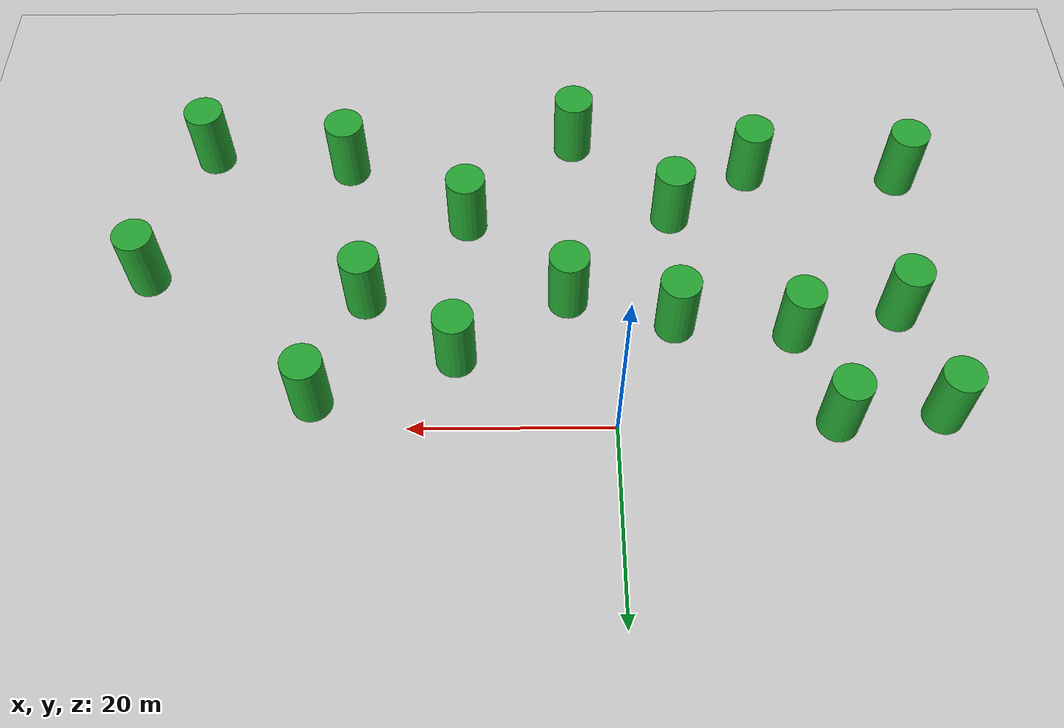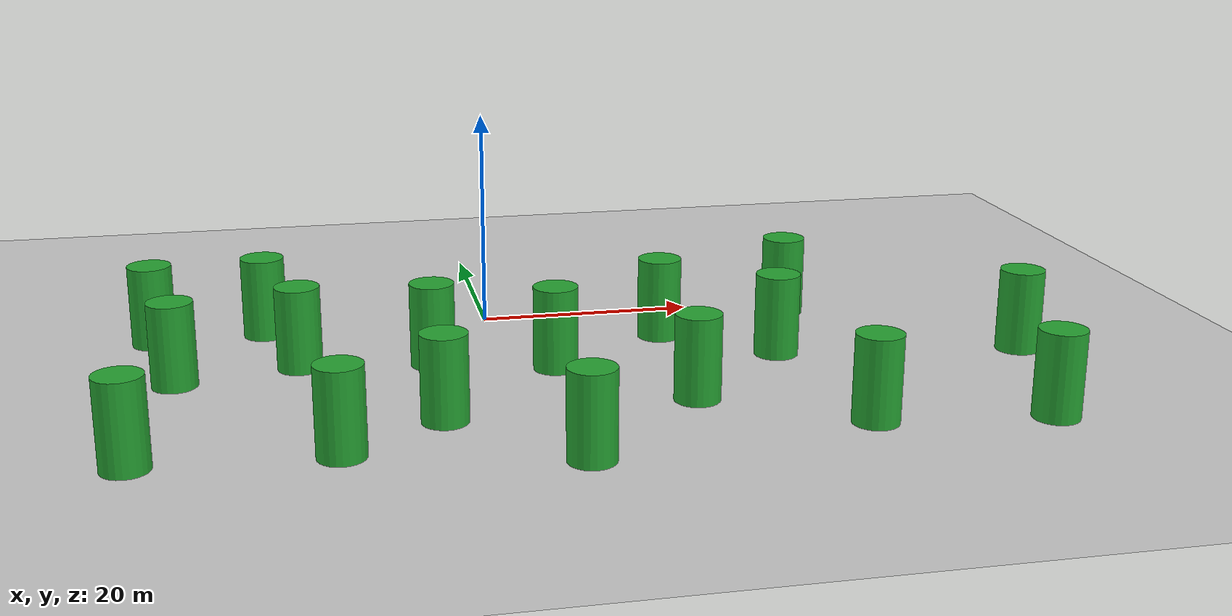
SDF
<sdf version="1.7">
 <world name="default">
  <model name="ground_plane">
   <static>1</static>
   <link name="link">
    <collision name="collision">
     <geometry><plane><normal>0 0 1</normal><size>100 100</size></plane></geometry>
     <surface>
      <contact><collide_bitmask>65535</collide_bitmask></contact>
      <friction><ode><mu>100</mu><mu2>50</mu2></ode></friction>
     </surface>
    </collision>
    <visual name="visual">
     <cast_shadows>0</cast_shadows>
     <geometry><plane><normal>0 0 1</normal><size>100 100</size></plane></geometry>
     <material>
      <script><uri>file://media/materials/scripts/gazebo.material</uri><name>Gazebo/Grey</name></script>
     </material>
    </visual>
   </link>
  </model>
  <model name="unit_cylinder_green_2_clone">
   <link name="link">
    <inertial>
     <mass>1</mass>
     <inertia><ixx>0.145833</ixx><ixy>0</ixy><ixz>0</ixz><iyy>0.145833</iyy><iyz>0</iyz><izz>0.125</izz></inertia>
    </inertial>
    <visual name="visual">
     <geometry><cylinder><radius>2</radius><length>10</length></cylinder></geometry>
     <material>
      <script><name>Gazebo/Green</name><uri>file://media/materials/scripts/gazebo.material</uri></script>
      <shader type="pixel"><normal_map>__default__</normal_map></shader>
      <ambient>0 1 0.3 1</ambient>
      <diffuse>0.7 0.7 0.7 1</diffuse>
      <specular>0.01 0.01 0.01 1</specular>
      <emissive>0 0 0 1</emissive>
     </material>
    </visual>
    <collision name="collision">
     <geometry><cylinder><radius>2</radius><length>5</length></cylinder></geometry>
     <surface>
      <friction>
       <ode><mu>1</mu><mu2>1</mu2><fdir1>0 0 0</fdir1><slip1>0</slip1><slip2>0</slip2></ode>
       <torsional>
        <coefficient>1</coefficient>
        <patch_radius>0</patch_radius>
        <surface_radius>0</surface_radius>
        <use_patch_radius>1</use_patch_radius>
        <ode><slip>0</slip></ode>
       </torsional>
      </friction>
      <bounce><restitution_coefficient>0</restitution_coefficient><threshold>1e+06</threshold></bounce>
      <contact>
       <collide_without_contact>0</collide_without_contact>
       <collide_without_contact_bitmask>1</collide_without_contact_bitmask>
       <collide_bitmask>1</collide_bitmask>
       <ode>
        <soft_cfm>0</soft_cfm>
        <soft_erp>0.2</soft_erp>
        <kp>1e+13</kp>
        <kd>1</kd>
        <max_vel>0.01</max_vel>
        <min_depth>0</min_depth>
       </ode>
       <bullet>
        <split_impulse>1</split_impulse>
        <split_impulse_penetration_threshold>-0.01</split_impulse_penetration_threshold>
        <soft_cfm>0</soft_cfm>
        <soft_erp>0.2</soft_erp>
        <kp>1e+13</kp>
        <kd>1</kd>
       </bullet>
      </contact>
     </surface>
    </collision>
   </link>
   <static>0</static>
   <pose>-6.19288 -11.5757 2.49999 0 0 -0.000968</pose>
  </model>
  <model name="unit_cylinder_green_2_clone_0">
   <link name="link">
    <inertial>
     <mass>1</mass>
     <inertia><ixx>0.145833</ixx><ixy>0</ixy><ixz>0</ixz><iyy>0.145833</iyy><iyz>0</iyz><izz>0.125</izz></inertia>
    </inertial>
    <visual name="visual">
     <geometry><cylinder><radius>2</radius><length>10</length></cylinder></geometry>
     <material>
      <script><name>Gazebo/Green</name><uri>file://media/materials/scripts/gazebo.material</uri></script>
      <shader type="pixel"><normal_map>__default__</normal_map></shader>
      <ambient>0 1 0.3 1</ambient>
      <diffuse>0.7 0.7 0.7 1</diffuse>
      <specular>0.01 0.01 0.01 1</specular>
      <emissive>0 0 0 1</emissive>
     </material>
    </visual>
    <collision name="collision">
     <geometry><cylinder><radius>2</radius><length>5</length></cylinder></geometry>
     <surface>
      <friction>
       <ode><mu>1</mu><mu2>1</mu2><fdir1>0 0 0</fdir1><slip1>0</slip1><slip2>0</slip2></ode>
       <torsional>
        <coefficient>1</coefficient>
        <patch_radius>0</patch_radius>
        <surface_radius>0</surface_radius>
        <use_patch_radius>1</use_patch_radius>
        <ode><slip>0</slip></ode>
       </torsional>
      </friction>
      <bounce><restitution_coefficient>0</restitution_coefficient><threshold>1e+06</threshold></bounce>
      <contact>
       <collide_without_contact>0</collide_without_contact>
       <collide_without_contact_bitmask>1</collide_without_contact_bitmask>
       <collide_bitmask>1</collide_bitmask>
       <ode>
        <soft_cfm>0</soft_cfm>
        <soft_erp>0.2</soft_erp>
        <kp>1e+13</kp>
        <kd>1</kd>
        <max_vel>0.01</max_vel>
        <min_depth>0</min_depth>
       </ode>
       <bullet>
        <split_impulse>1</split_impulse>
        <split_impulse_penetration_threshold>-0.01</split_impulse_penetration_threshold>
        <soft_cfm>0</soft_cfm>
        <soft_erp>0.2</soft_erp>
        <kp>1e+13</kp>
        <kd>1</kd>
       </bullet>
      </contact>
     </surface>
    </collision>
   </link>
   <static>0</static>
   <pose>-17.8904 -10.2821 2.49999 0 0 -0.000968</pose>
  </model>
  <model name="unit_cylinder_green_2_clone_2">
   <link name="link">
    <inertial>
     <mass>1</mass>
     <inertia><ixx>0.145833</ixx><ixy>0</ixy><ixz>0</ixz><iyy>0.145833</iyy><iyz>0</iyz><izz>0.125</izz></inertia>
    </inertial>
    <visual name="visual">
     <geometry><cylinder><radius>2</radius><length>10</length></cylinder></geometry>
     <material>
      <script><name>Gazebo/Green</name><uri>file://media/materials/scripts/gazebo.material</uri></script>
      <shader type="pixel"><normal_map>__default__</normal_map></shader>
      <ambient>0 1 0.3 1</ambient>
      <diffuse>0.7 0.7 0.7 1</diffuse>
      <specular>0.01 0.01 0.01 1</specular>
      <emissive>0 0 0 1</emissive>
     </material>
    </visual>
    <collision name="collision">
     <geometry><cylinder><radius>2</radius><length>5</length></cylinder></geometry>
     <surface>
      <friction>
       <ode><mu>1</mu><mu2>1</mu2><fdir1>0 0 0</fdir1><slip1>0</slip1><slip2>0</slip2></ode>
       <torsional>
        <coefficient>1</coefficient>
        <patch_radius>0</patch_radius>
        <surface_radius>0</surface_radius>
        <use_patch_radius>1</use_patch_radius>
        <ode><slip>0</slip></ode>
       </torsional>
      </friction>
      <bounce><restitution_coefficient>0</restitution_coefficient><threshold>1e+06</threshold></bounce>
      <contact>
       <collide_without_contact>0</collide_without_contact>
       <collide_without_contact_bitmask>1</collide_without_contact_bitmask>
       <collide_bitmask>1</collide_bitmask>
       <ode>
        <soft_cfm>0</soft_cfm>
        <soft_erp>0.2</soft_erp>
        <kp>1e+13</kp>
        <kd>1</kd>
        <max_vel>0.01</max_vel>
        <min_depth>0</min_depth>
       </ode>
       <bullet>
        <split_impulse>1</split_impulse>
        <split_impulse_penetration_threshold>-0.01</split_impulse_penetration_threshold>
        <soft_cfm>0</soft_cfm>
        <soft_erp>0.2</soft_erp>
        <kp>1e+13</kp>
        <kd>1</kd>
       </bullet>
      </contact>
     </surface>
    </collision>
   </link>
   <static>0</static>
   <pose>-20.8598 -0.277149 2.49999 0 0 -0.000968</pose>
  </model>
  <model name="unit_cylinder_green_2_clone_clone_7">
   <link name="link">
    <inertial>
     <mass>1</mass>
     <inertia><ixx>0.145833</ixx><ixy>0</ixy><ixz>0</ixz><iyy>0.145833</iyy><iyz>0</iyz><izz>0.125</izz></inertia>
    </inertial>
    <visual name="visual">
     <geometry><cylinder><radius>2</radius><length>10</length></cylinder></geometry>
     <material>
      <script><name>Gazebo/Green</name><uri>file://media/materials/scripts/gazebo.material</uri></script>
      <shader type="pixel"><normal_map>__default__</normal_map></shader>
      <ambient>0 1 0.3 1</ambient>
      <diffuse>0.7 0.7 0.7 1</diffuse>
      <specular>0.01 0.01 0.01 1</specular>
      <emissive>0 0 0 1</emissive>
     </material>
    </visual>
    <collision name="collision">
     <geometry><cylinder><radius>2</radius><length>5</length></cylinder></geometry>
     <surface>
      <friction>
       <ode><mu>1</mu><mu2>1</mu2><fdir1>0 0 0</fdir1><slip1>0</slip1><slip2>0</slip2></ode>
       <torsional>
        <coefficient>1</coefficient>
        <patch_radius>0</patch_radius>
        <surface_radius>0</surface_radius>
        <use_patch_radius>1</use_patch_radius>
        <ode><slip>0</slip></ode>
       </torsional>
      </friction>
      <bounce><restitution_coefficient>0</restitution_coefficient><threshold>1e+06</threshold></bounce>
      <contact>
       <collide_without_contact>0</collide_without_contact>
       <collide_without_contact_bitmask>1</collide_without_contact_bitmask>
       <collide_bitmask>1</collide_bitmask>
       <ode>
        <soft_cfm>0</soft_cfm>
        <soft_erp>0.2</soft_erp>
        <kp>1e+13</kp>
        <kd>1</kd>
        <max_vel>0.01</max_vel>
        <min_depth>0</min_depth>
       </ode>
       <bullet>
        <split_impulse>1</split_impulse>
        <split_impulse_penetration_threshold>-0.01</split_impulse_penetration_threshold>
        <soft_cfm>0</soft_cfm>
        <soft_erp>0.2</soft_erp>
        <kp>1e+13</kp>
        <kd>1</kd>
       </bullet>
      </contact>
     </surface>
    </collision>
   </link>
   <static>0</static>
   <pose>-31 -1 2.49999 0 0 -0.000967</pose>
  </model>
  <model name="unit_cylinder_green_2_clone_clone_13">
   <link name="link">
    <inertial>
     <mass>1</mass>
     <inertia><ixx>0.145833</ixx><ixy>0</ixy><ixz>0</ixz><iyy>0.145833</iyy><iyz>0</iyz><izz>0.125</izz></inertia>
    </inertial>
    <visual name="visual">
     <geometry><cylinder><radius>2</radius><length>10</length></cylinder></geometry>
     <material>
      <script><name>Gazebo/Green</name><uri>file://media/materials/scripts/gazebo.material</uri></script>
      <shader type="pixel"><normal_map>__default__</normal_map></shader>
      <ambient>0 1 0.3 1</ambient>
      <diffuse>0.7 0.7 0.7 1</diffuse>
      <specular>0.01 0.01 0.01 1</specular>
      <emissive>0 0 0 1</emissive>
     </material>
    </visual>
    <collision name="collision">
     <geometry><cylinder><radius>2</radius><length>5</length></cylinder></geometry>
     <surface>
      <friction>
       <ode><mu>1</mu><mu2>1</mu2><fdir1>0 0 0</fdir1><slip1>0</slip1><slip2>0</slip2></ode>
       <torsional>
        <coefficient>1</coefficient>
        <patch_radius>0</patch_radius>
        <surface_radius>0</surface_radius>
        <use_patch_radius>1</use_patch_radius>
        <ode><slip>0</slip></ode>
       </torsional>
      </friction>
      <bounce><restitution_coefficient>0</restitution_coefficient><threshold>1e+06</threshold></bounce>
      <contact>
       <collide_without_contact>0</collide_without_contact>
       <collide_without_contact_bitmask>1</collide_without_contact_bitmask>
       <collide_bitmask>1</collide_bitmask>
       <ode>
        <soft_cfm>0</soft_cfm>
        <soft_erp>0.2</soft_erp>
        <kp>1e+13</kp>
        <kd>1</kd>
        <max_vel>0.01</max_vel>
        <min_depth>0</min_depth>
       </ode>
       <bullet>
        <split_impulse>1</split_impulse>
        <split_impulse_penetration_threshold>-0.01</split_impulse_penetration_threshold>
        <soft_cfm>0</soft_cfm>
        <soft_erp>0.2</soft_erp>
        <kp>1e+13</kp>
        <kd>1</kd>
       </bullet>
      </contact>
     </surface>
    </collision>
   </link>
   <static>0</static>
   <pose>-28.5894 -12.7369 2.49999 0 0 -0.000967</pose>
  </model>
  <model name="unit_cylinder_green_2_clone_clone_15">
   <link name="link">
    <inertial>
     <mass>1</mass>
     <inertia><ixx>0.145833</ixx><ixy>0</ixy><ixz>0</ixz><iyy>0.145833</iyy><iyz>0</iyz><izz>0.125</izz></inertia>
    </inertial>
    <visual name="visual">
     <geometry><cylinder><radius>2</radius><length>10</length></cylinder></geometry>
     <material>
      <script><name>Gazebo/Green</name><uri>file://media/materials/scripts/gazebo.material</uri></script>
      <shader type="pixel"><normal_map>__default__</normal_map></shader>
      <ambient>0 1 0.3 1</ambient>
      <diffuse>0.7 0.7 0.7 1</diffuse>
      <specular>0.01 0.01 0.01 1</specular>
      <emissive>0 0 0 1</emissive>
     </material>
    </visual>
    <collision name="collision">
     <geometry><cylinder><radius>2</radius><length>5</length></cylinder></geometry>
     <surface>
      <friction>
       <ode><mu>1</mu><mu2>1</mu2><fdir1>0 0 0</fdir1><slip1>0</slip1><slip2>0</slip2></ode>
       <torsional>
        <coefficient>1</coefficient>
        <patch_radius>0</patch_radius>
        <surface_radius>0</surface_radius>
        <use_patch_radius>1</use_patch_radius>
        <ode><slip>0</slip></ode>
       </torsional>
      </friction>
      <bounce><restitution_coefficient>0</restitution_coefficient><threshold>1e+06</threshold></bounce>
      <contact>
       <collide_without_contact>0</collide_without_contact>
       <collide_without_contact_bitmask>1</collide_without_contact_bitmask>
       <collide_bitmask>1</collide_bitmask>
       <ode>
        <soft_cfm>0</soft_cfm>
        <soft_erp>0.2</soft_erp>
        <kp>1e+13</kp>
        <kd>1</kd>
        <max_vel>0.01</max_vel>
        <min_depth>0</min_depth>
       </ode>
       <bullet>
        <split_impulse>1</split_impulse>
        <split_impulse_penetration_threshold>-0.01</split_impulse_penetration_threshold>
        <soft_cfm>0</soft_cfm>
        <soft_erp>0.2</soft_erp>
        <kp>1e+13</kp>
        <kd>1</kd>
       </bullet>
      </contact>
     </surface>
    </collision>
   </link>
   <static>0</static>
   <pose>4.37271 -14.6733 2.49999 0 0 -0.000967</pose>
  </model>
  <model name="unit_cylinder_green_2_clone_clone_16">
   <link name="link">
    <inertial>
     <mass>1</mass>
     <inertia><ixx>0.145833</ixx><ixy>0</ixy><ixz>0</ixz><iyy>0.145833</iyy><iyz>0</iyz><izz>0.125</izz></inertia>
    </inertial>
    <visual name="visual">
     <geometry><cylinder><radius>2</radius><length>10</length></cylinder></geometry>
     <material>
      <script><name>Gazebo/Green</name><uri>file://media/materials/scripts/gazebo.material</uri></script>
      <shader type="pixel"><normal_map>__default__</normal_map></shader>
      <ambient>0 1 0.3 1</ambient>
      <diffuse>0.7 0.7 0.7 1</diffuse>
      <specular>0.01 0.01 0.01 1</specular>
      <emissive>0 0 0 1</emissive>
     </material>
    </visual>
    <collision name="collision">
     <geometry><cylinder><radius>2</radius><length>5</length></cylinder></geometry>
     <surface>
      <friction>
       <ode><mu>1</mu><mu2>1</mu2><fdir1>0 0 0</fdir1><slip1>0</slip1><slip2>0</slip2></ode>
       <torsional>
        <coefficient>1</coefficient>
        <patch_radius>0</patch_radius>
        <surface_radius>0</surface_radius>
        <use_patch_radius>1</use_patch_radius>
        <ode><slip>0</slip></ode>
       </torsional>
      </friction>
      <bounce><restitution_coefficient>0</restitution_coefficient><threshold>1e+06</threshold></bounce>
      <contact>
       <collide_without_contact>0</collide_without_contact>
       <collide_without_contact_bitmask>1</collide_without_contact_bitmask>
       <collide_bitmask>1</collide_bitmask>
       <ode>
        <soft_cfm>0</soft_cfm>
        <soft_erp>0.2</soft_erp>
        <kp>1e+13</kp>
        <kd>1</kd>
        <max_vel>0.01</max_vel>
        <min_depth>0</min_depth>
       </ode>
       <bullet>
        <split_impulse>1</split_impulse>
        <split_impulse_penetration_threshold>-0.01</split_impulse_penetration_threshold>
        <soft_cfm>0</soft_cfm>
        <soft_erp>0.2</soft_erp>
        <kp>1e+13</kp>
        <kd>1</kd>
       </bullet>
      </contact>
     </surface>
    </collision>
   </link>
   <static>0</static>
   <pose>15.4924 -7.74923 2.49999 0 0 -0.000967</pose>
  </model>
  <model name="unit_cylinder_green_2_clone_clone_20">
   <link name="link">
    <inertial>
     <mass>1</mass>
     <inertia><ixx>0.145833</ixx><ixy>0</ixy><ixz>0</ixz><iyy>0.145833</iyy><iyz>0</iyz><izz>0.125</izz></inertia>
    </inertial>
    <visual name="visual">
     <geometry><cylinder><radius>2</radius><length>10</length></cylinder></geometry>
     <material>
      <script><name>Gazebo/Green</name><uri>file://media/materials/scripts/gazebo.material</uri></script>
      <shader type="pixel"><normal_map>__default__</normal_map></shader>
      <ambient>0 1 0.3 1</ambient>
      <diffuse>0.7 0.7 0.7 1</diffuse>
      <specular>0.01 0.01 0.01 1</specular>
      <emissive>0 0 0 1</emissive>
     </material>
    </visual>
    <collision name="collision">
     <geometry><cylinder><radius>2</radius><length>5</length></cylinder></geometry>
     <surface>
      <friction>
       <ode><mu>1</mu><mu2>1</mu2><fdir1>0 0 0</fdir1><slip1>0</slip1><slip2>0</slip2></ode>
       <torsional>
        <coefficient>1</coefficient>
        <patch_radius>0</patch_radius>
        <surface_radius>0</surface_radius>
        <use_patch_radius>1</use_patch_radius>
        <ode><slip>0</slip></ode>
       </torsional>
      </friction>
      <bounce><restitution_coefficient>0</restitution_coefficient><threshold>1e+06</threshold></bounce>
      <contact>
       <collide_without_contact>0</collide_without_contact>
       <collide_without_contact_bitmask>1</collide_without_contact_bitmask>
       <collide_bitmask>1</collide_bitmask>
       <ode>
        <soft_cfm>0</soft_cfm>
        <soft_erp>0.2</soft_erp>
        <kp>1e+13</kp>
        <kd>1</kd>
        <max_vel>0.01</max_vel>
        <min_depth>0</min_depth>
       </ode>
       <bullet>
        <split_impulse>1</split_impulse>
        <split_impulse_penetration_threshold>-0.01</split_impulse_penetration_threshold>
        <soft_cfm>0</soft_cfm>
        <soft_erp>0.2</soft_erp>
        <kp>1e+13</kp>
        <kd>1</kd>
       </bullet>
      </contact>
     </surface>
    </collision>
   </link>
   <static>0</static>
   <pose>24.7504 -14.7528 2.49999 0 0 -0.000967</pose>
  </model>
  <model name="unit_cylinder_green_2_clone_clone_21">
   <link name="link">
    <inertial>
     <mass>1</mass>
     <inertia><ixx>0.145833</ixx><ixy>0</ixy><ixz>0</ixz><iyy>0.145833</iyy><iyz>0</iyz><izz>0.125</izz></inertia>
    </inertial>
    <visual name="visual">
     <geometry><cylinder><radius>2</radius><length>10</length></cylinder></geometry>
     <material>
      <script><name>Gazebo/Green</name><uri>file://media/materials/scripts/gazebo.material</uri></script>
      <shader type="pixel"><normal_map>__default__</normal_map></shader>
      <ambient>0 1 0.3 1</ambient>
      <diffuse>0.7 0.7 0.7 1</diffuse>
      <specular>0.01 0.01 0.01 1</specular>
      <emissive>0 0 0 1</emissive>
     </material>
    </visual>
    <collision name="collision">
     <geometry><cylinder><radius>2</radius><length>5</length></cylinder></geometry>
     <surface>
      <friction>
       <ode><mu>1</mu><mu2>1</mu2><fdir1>0 0 0</fdir1><slip1>0</slip1><slip2>0</slip2></ode>
       <torsional>
        <coefficient>1</coefficient>
        <patch_radius>0</patch_radius>
        <surface_radius>0</surface_radius>
        <use_patch_radius>1</use_patch_radius>
        <ode><slip>0</slip></ode>
       </torsional>
      </friction>
      <bounce><restitution_coefficient>0</restitution_coefficient><threshold>1e+06</threshold></bounce>
      <contact>
       <collide_without_contact>0</collide_without_contact>
       <collide_without_contact_bitmask>1</collide_without_contact_bitmask>
       <collide_bitmask>1</collide_bitmask>
       <ode>
        <soft_cfm>0</soft_cfm>
        <soft_erp>0.2</soft_erp>
        <kp>1e+13</kp>
        <kd>1</kd>
        <max_vel>0.01</max_vel>
        <min_depth>0</min_depth>
       </ode>
       <bullet>
        <split_impulse>1</split_impulse>
        <split_impulse_penetration_threshold>-0.01</split_impulse_penetration_threshold>
        <soft_cfm>0</soft_cfm>
        <soft_erp>0.2</soft_erp>
        <kp>1e+13</kp>
        <kd>1</kd>
       </bullet>
      </contact>
     </surface>
    </collision>
   </link>
   <static>0</static>
   <pose>29.1591 -2.89554 2.49999 0 0 -0.000967</pose>
  </model>
  <model name="unit_cylinder_green_2_clone_clone_24">
   <link name="link">
    <inertial>
     <mass>1</mass>
     <inertia><ixx>0.145833</ixx><ixy>0</ixy><ixz>0</ixz><iyy>0.145833</iyy><iyz>0</iyz><izz>0.125</izz></inertia>
    </inertial>
    <visual name="visual">
     <geometry><cylinder><radius>2</radius><length>10</length></cylinder></geometry>
     <material>
      <script><name>Gazebo/Green</name><uri>file://media/materials/scripts/gazebo.material</uri></script>
      <shader type="pixel"><normal_map>__default__</normal_map></shader>
      <ambient>0 1 0.3 1</ambient>
      <diffuse>0.7 0.7 0.7 1</diffuse>
      <specular>0.01 0.01 0.01 1</specular>
      <emissive>0 0 0 1</emissive>
     </material>
    </visual>
    <collision name="collision">
     <geometry><cylinder><radius>2</radius><length>5</length></cylinder></geometry>
     <surface>
      <friction>
       <ode><mu>1</mu><mu2>1</mu2><fdir1>0 0 0</fdir1><slip1>0</slip1><slip2>0</slip2></ode>
       <torsional>
        <coefficient>1</coefficient>
        <patch_radius>0</patch_radius>
        <surface_radius>0</surface_radius>
        <use_patch_radius>1</use_patch_radius>
        <ode><slip>0</slip></ode>
       </torsional>
      </friction>
      <bounce><restitution_coefficient>0</restitution_coefficient><threshold>1e+06</threshold></bounce>
      <contact>
       <collide_without_contact>0</collide_without_contact>
       <collide_without_contact_bitmask>1</collide_without_contact_bitmask>
       <collide_bitmask>1</collide_bitmask>
       <ode>
        <soft_cfm>0</soft_cfm>
        <soft_erp>0.2</soft_erp>
        <kp>1e+13</kp>
        <kd>1</kd>
        <max_vel>0.01</max_vel>
        <min_depth>0</min_depth>
       </ode>
       <bullet>
        <split_impulse>1</split_impulse>
        <split_impulse_penetration_threshold>-0.01</split_impulse_penetration_threshold>
        <soft_cfm>0</soft_cfm>
        <soft_erp>0.2</soft_erp>
        <kp>1e+13</kp>
        <kd>1</kd>
       </bullet>
      </contact>
     </surface>
    </collision>
   </link>
   <static>0</static>
   <pose>14.6632 -24.6133 2.49999 0 0 -0.000967</pose>
  </model>
  <model name="unit_cylinder_green_2_clone_clone_25">
   <link name="link">
    <inertial>
     <mass>1</mass>
     <inertia><ixx>0.145833</ixx><ixy>0</ixy><ixz>0</ixz><iyy>0.145833</iyy><iyz>0</iyz><izz>0.125</izz></inertia>
    </inertial>
    <visual name="visual">
     <geometry><cylinder><radius>2</radius><length>10</length></cylinder></geometry>
     <material>
      <script><name>Gazebo/Green</name><uri>file://media/materials/scripts/gazebo.material</uri></script>
      <shader type="pixel"><normal_map>__default__</normal_map></shader>
      <ambient>0 1 0.3 1</ambient>
      <diffuse>0.7 0.7 0.7 1</diffuse>
      <specular>0.01 0.01 0.01 1</specular>
      <emissive>0 0 0 1</emissive>
     </material>
    </visual>
    <collision name="collision">
     <geometry><cylinder><radius>2</radius><length>5</length></cylinder></geometry>
     <surface>
      <friction>
       <ode><mu>1</mu><mu2>1</mu2><fdir1>0 0 0</fdir1><slip1>0</slip1><slip2>0</slip2></ode>
       <torsional>
        <coefficient>1</coefficient>
        <patch_radius>0</patch_radius>
        <surface_radius>0</surface_radius>
        <use_patch_radius>1</use_patch_radius>
        <ode><slip>0</slip></ode>
       </torsional>
      </friction>
      <bounce><restitution_coefficient>0</restitution_coefficient><threshold>1e+06</threshold></bounce>
      <contact>
       <collide_without_contact>0</collide_without_contact>
       <collide_without_contact_bitmask>1</collide_without_contact_bitmask>
       <collide_bitmask>1</collide_bitmask>
       <ode>
        <soft_cfm>0</soft_cfm>
        <soft_erp>0.2</soft_erp>
        <kp>1e+13</kp>
        <kd>1</kd>
        <max_vel>0.01</max_vel>
        <min_depth>0</min_depth>
       </ode>
       <bullet>
        <split_impulse>1</split_impulse>
        <split_impulse_penetration_threshold>-0.01</split_impulse_penetration_threshold>
        <soft_cfm>0</soft_cfm>
        <soft_erp>0.2</soft_erp>
        <kp>1e+13</kp>
        <kd>1</kd>
       </bullet>
      </contact>
     </surface>
    </collision>
   </link>
   <static>0</static>
   <pose>-6.66472 -25.4538 2.49999 0 0 -0.000967</pose>
  </model>
  <model name="unit_cylinder_green_2_clone_clone_26">
   <link name="link">
    <inertial>
     <mass>1</mass>
     <inertia><ixx>0.145833</ixx><ixy>0</ixy><ixz>0</ixz><iyy>0.145833</iyy><iyz>0</iyz><izz>0.125</izz></inertia>
    </inertial>
    <visual name="visual">
     <geometry><cylinder><radius>2</radius><length>10</length></cylinder></geometry>
     <material>
      <script><name>Gazebo/Green</name><uri>file://media/materials/scripts/gazebo.material</uri></script>
      <shader type="pixel"><normal_map>__default__</normal_map></shader>
      <ambient>0 1 0.3 1</ambient>
      <diffuse>0.7 0.7 0.7 1</diffuse>
      <specular>0.01 0.01 0.01 1</specular>
      <emissive>0 0 0 1</emissive>
     </material>
    </visual>
    <collision name="collision">
     <geometry><cylinder><radius>2</radius><length>5</length></cylinder></geometry>
     <surface>
      <friction>
       <ode><mu>1</mu><mu2>1</mu2><fdir1>0 0 0</fdir1><slip1>0</slip1><slip2>0</slip2></ode>
       <torsional>
        <coefficient>1</coefficient>
        <patch_radius>0</patch_radius>
        <surface_radius>0</surface_radius>
        <use_patch_radius>1</use_patch_radius>
        <ode><slip>0</slip></ode>
       </torsional>
      </friction>
      <bounce><restitution_coefficient>0</restitution_coefficient><threshold>1e+06</threshold></bounce>
      <contact>
       <collide_without_contact>0</collide_without_contact>
       <collide_without_contact_bitmask>1</collide_without_contact_bitmask>
       <collide_bitmask>1</collide_bitmask>
       <ode>
        <soft_cfm>0</soft_cfm>
        <soft_erp>0.2</soft_erp>
        <kp>1e+13</kp>
        <kd>1</kd>
        <max_vel>0.01</max_vel>
        <min_depth>0</min_depth>
       </ode>
       <bullet>
        <split_impulse>1</split_impulse>
        <split_impulse_penetration_threshold>-0.01</split_impulse_penetration_threshold>
        <soft_cfm>0</soft_cfm>
        <soft_erp>0.2</soft_erp>
        <kp>1e+13</kp>
        <kd>1</kd>
       </bullet>
      </contact>
     </surface>
    </collision>
   </link>
   <static>0</static>
   <pose>3.3991 -35.5892 2.49999 0 0 -0.000967</pose>
  </model>
  <model name="unit_cylinder_green_2_clone_clone_27">
   <link name="link">
    <inertial>
     <mass>1</mass>
     <inertia><ixx>0.145833</ixx><ixy>0</ixy><ixz>0</ixz><iyy>0.145833</iyy><iyz>0</iyz><izz>0.125</izz></inertia>
    </inertial>
    <visual name="visual">
     <geometry><cylinder><radius>2</radius><length>10</length></cylinder></geometry>
     <material>
      <script><name>Gazebo/Green</name><uri>file://media/materials/scripts/gazebo.material</uri></script>
      <shader type="pixel"><normal_map>__default__</normal_map></shader>
      <ambient>0 1 0.3 1</ambient>
      <diffuse>0.7 0.7 0.7 1</diffuse>
      <specular>0.01 0.01 0.01 1</specular>
      <emissive>0 0 0 1</emissive>
     </material>
    </visual>
    <collision name="collision">
     <geometry><cylinder><radius>2</radius><length>5</length></cylinder></geometry>
     <surface>
      <friction>
       <ode><mu>1</mu><mu2>1</mu2><fdir1>0 0 0</fdir1><slip1>0</slip1><slip2>0</slip2></ode>
       <torsional>
        <coefficient>1</coefficient>
        <patch_radius>0</patch_radius>
        <surface_radius>0</surface_radius>
        <use_patch_radius>1</use_patch_radius>
        <ode><slip>0</slip></ode>
       </torsional>
      </friction>
      <bounce><restitution_coefficient>0</restitution_coefficient><threshold>1e+06</threshold></bounce>
      <contact>
       <collide_without_contact>0</collide_without_contact>
       <collide_without_contact_bitmask>1</collide_without_contact_bitmask>
       <collide_bitmask>1</collide_bitmask>
       <ode>
        <soft_cfm>0</soft_cfm>
        <soft_erp>0.2</soft_erp>
        <kp>1e+13</kp>
        <kd>1</kd>
        <max_vel>0.01</max_vel>
        <min_depth>0</min_depth>
       </ode>
       <bullet>
        <split_impulse>1</split_impulse>
        <split_impulse_penetration_threshold>-0.01</split_impulse_penetration_threshold>
        <soft_cfm>0</soft_cfm>
        <soft_erp>0.2</soft_erp>
        <kp>1e+13</kp>
        <kd>1</kd>
       </bullet>
      </contact>
     </surface>
    </collision>
   </link>
   <static>0</static>
   <pose>-15.2602 -31.188 2.49999 0 0 -0.000967</pose>
  </model>
  <model name="unit_cylinder_green_2_clone_clone_28">
   <link name="link">
    <inertial>
     <mass>1</mass>
     <inertia><ixx>0.145833</ixx><ixy>0</ixy><ixz>0</ixz><iyy>0.145833</iyy><iyz>0</iyz><izz>0.125</izz></inertia>
    </inertial>
    <visual name="visual">
     <geometry><cylinder><radius>2</radius><length>10</length></cylinder></geometry>
     <material>
      <script><name>Gazebo/Green</name><uri>file://media/materials/scripts/gazebo.material</uri></script>
      <shader type="pixel"><normal_map>__default__</normal_map></shader>
      <ambient>0 1 0.3 1</ambient>
      <diffuse>0.7 0.7 0.7 1</diffuse>
      <specular>0.01 0.01 0.01 1</specular>
      <emissive>0 0 0 1</emissive>
     </material>
    </visual>
    <collision name="collision">
     <geometry><cylinder><radius>2</radius><length>5</length></cylinder></geometry>
     <surface>
      <friction>
       <ode><mu>1</mu><mu2>1</mu2><fdir1>0 0 0</fdir1><slip1>0</slip1><slip2>0</slip2></ode>
       <torsional>
        <coefficient>1</coefficient>
        <patch_radius>0</patch_radius>
        <surface_radius>0</surface_radius>
        <use_patch_radius>1</use_patch_radius>
        <ode><slip>0</slip></ode>
       </torsional>
      </friction>
      <bounce><restitution_coefficient>0</restitution_coefficient><threshold>1e+06</threshold></bounce>
      <contact>
       <collide_without_contact>0</collide_without_contact>
       <collide_without_contact_bitmask>1</collide_without_contact_bitmask>
       <collide_bitmask>1</collide_bitmask>
       <ode>
        <soft_cfm>0</soft_cfm>
        <soft_erp>0.2</soft_erp>
        <kp>1e+13</kp>
        <kd>1</kd>
        <max_vel>0.01</max_vel>
        <min_depth>0</min_depth>
       </ode>
       <bullet>
        <split_impulse>1</split_impulse>
        <split_impulse_penetration_threshold>-0.01</split_impulse_penetration_threshold>
        <soft_cfm>0</soft_cfm>
        <soft_erp>0.2</soft_erp>
        <kp>1e+13</kp>
        <kd>1</kd>
       </bullet>
      </contact>
     </surface>
    </collision>
   </link>
   <static>0</static>
   <pose>-31.3539 -30.433 2.49999 0 0 -0.000967</pose>
  </model>
  <model name="unit_cylinder_green_2_clone_clone_17_clone">
   <link name="link">
    <inertial>
     <mass>1</mass>
     <inertia><ixx>0.145833</ixx><ixy>0</ixy><ixz>0</ixz><iyy>0.145833</iyy><iyz>0</iyz><izz>0.125</izz></inertia>
    </inertial>
    <visual name="visual">
     <geometry><cylinder><radius>2</radius><length>10</length></cylinder></geometry>
     <material>
      <script><name>Gazebo/Green</name><uri>file://media/materials/scripts/gazebo.material</uri></script>
      <shader type="pixel"><normal_map>__default__</normal_map></shader>
      <ambient>0 1 0.3 1</ambient>
      <diffuse>0.7 0.7 0.7 1</diffuse>
      <specular>0.01 0.01 0.01 1</specular>
      <emissive>0 0 0 1</emissive>
     </material>
    </visual>
    <collision name="collision">
     <geometry><cylinder><radius>2</radius><length>5</length></cylinder></geometry>
     <surface>
      <friction>
       <ode><mu>1</mu><mu2>1</mu2><fdir1>0 0 0</fdir1><slip1>0</slip1><slip2>0</slip2></ode>
       <torsional>
        <coefficient>1</coefficient>
        <patch_radius>0</patch_radius>
        <surface_radius>0</surface_radius>
        <use_patch_radius>1</use_patch_radius>
        <ode><slip>0</slip></ode>
       </torsional>
      </friction>
      <bounce><restitution_coefficient>0</restitution_coefficient><threshold>1e+06</threshold></bounce>
      <contact>
       <collide_without_contact>0</collide_without_contact>
       <collide_without_contact_bitmask>1</collide_without_contact_bitmask>
       <collide_bitmask>1</collide_bitmask>
       <ode>
        <soft_cfm>0</soft_cfm>
        <soft_erp>0.2</soft_erp>
        <kp>1e+13</kp>
        <kd>1</kd>
        <max_vel>0.01</max_vel>
        <min_depth>0</min_depth>
       </ode>
       <bullet>
        <split_impulse>1</split_impulse>
        <split_impulse_penetration_threshold>-0.01</split_impulse_penetration_threshold>
        <soft_cfm>0</soft_cfm>
        <soft_erp>0.2</soft_erp>
        <kp>1e+13</kp>
        <kd>1</kd>
       </bullet>
      </contact>
     </surface>
    </collision>
   </link>
   <static>0</static>
   <pose>42.3584 -34.1999 2.49999 0 0 -0.000967</pose>
  </model>
  <model name="unit_cylinder_green_2_clone_clone_17_clone_0">
   <link name="link">
    <inertial>
     <mass>1</mass>
     <inertia><ixx>0.145833</ixx><ixy>0</ixy><ixz>0</ixz><iyy>0.145833</iyy><iyz>0</iyz><izz>0.125</izz></inertia>
    </inertial>
    <visual name="visual">
     <geometry><cylinder><radius>2</radius><length>10</length></cylinder></geometry>
     <material>
      <script><name>Gazebo/Green</name><uri>file://media/materials/scripts/gazebo.material</uri></script>
      <shader type="pixel"><normal_map>__default__</normal_map></shader>
      <ambient>0 1 0.3 1</ambient>
      <diffuse>0.7 0.7 0.7 1</diffuse>
      <specular>0.01 0.01 0.01 1</specular>
      <emissive>0 0 0 1</emissive>
     </material>
    </visual>
    <collision name="collision">
     <geometry><cylinder><radius>2</radius><length>5</length></cylinder></geometry>
     <surface>
      <friction>
       <ode><mu>1</mu><mu2>1</mu2><fdir1>0 0 0</fdir1><slip1>0</slip1><slip2>0</slip2></ode>
       <torsional>
        <coefficient>1</coefficient>
        <patch_radius>0</patch_radius>
        <surface_radius>0</surface_radius>
        <use_patch_radius>1</use_patch_radius>
        <ode><slip>0</slip></ode>
       </torsional>
      </friction>
      <bounce><restitution_coefficient>0</restitution_coefficient><threshold>1e+06</threshold></bounce>
      <contact>
       <collide_without_contact>0</collide_without_contact>
       <collide_without_contact_bitmask>1</collide_without_contact_bitmask>
       <collide_bitmask>1</collide_bitmask>
       <ode>
        <soft_cfm>0</soft_cfm>
        <soft_erp>0.2</soft_erp>
        <kp>1e+13</kp>
        <kd>1</kd>
        <max_vel>0.01</max_vel>
        <min_depth>0</min_depth>
       </ode>
       <bullet>
        <split_impulse>1</split_impulse>
        <split_impulse_penetration_threshold>-0.01</split_impulse_penetration_threshold>
        <soft_cfm>0</soft_cfm>
        <soft_erp>0.2</soft_erp>
        <kp>1e+13</kp>
        <kd>1</kd>
       </bullet>
      </contact>
     </surface>
    </collision>
   </link>
   <static>0</static>
   <pose>47.0102 -17.7298 2.5 0 0 -0.000967</pose>
  </model>
  <model name="unit_cylinder_green_2_clone_clone_17_clone_3">
   <link name="link">
    <inertial>
     <mass>1</mass>
     <inertia><ixx>0.145833</ixx><ixy>0</ixy><ixz>0</ixz><iyy>0.145833</iyy><iyz>0</iyz><izz>0.125</izz></inertia>
    </inertial>
    <visual name="visual">
     <geometry><cylinder><radius>2</radius><length>10</length></cylinder></geometry>
     <material>
      <script><name>Gazebo/Green</name><uri>file://media/materials/scripts/gazebo.material</uri></script>
      <shader type="pixel"><normal_map>__default__</normal_map></shader>
      <ambient>0 1 0.3 1</ambient>
      <diffuse>0.7 0.7 0.7 1</diffuse>
      <specular>0.01 0.01 0.01 1</specular>
      <emissive>0 0 0 1</emissive>
     </material>
    </visual>
    <collision name="collision">
     <geometry><cylinder><radius>2</radius><length>5</length></cylinder></geometry>
     <surface>
      <friction>
       <ode><mu>1</mu><mu2>1</mu2><fdir1>0 0 0</fdir1><slip1>0</slip1><slip2>0</slip2></ode>
       <torsional>
        <coefficient>1</coefficient>
        <patch_radius>0</patch_radius>
        <surface_radius>0</surface_radius>
        <use_patch_radius>1</use_patch_radius>
        <ode><slip>0</slip></ode>
       </torsional>
      </friction>
      <bounce><restitution_coefficient>0</restitution_coefficient><threshold>1e+06</threshold></bounce>
      <contact>
       <collide_without_contact>0</collide_without_contact>
       <collide_without_contact_bitmask>1</collide_without_contact_bitmask>
       <collide_bitmask>1</collide_bitmask>
       <ode>
        <soft_cfm>0</soft_cfm>
        <soft_erp>0.2</soft_erp>
        <kp>1e+13</kp>
        <kd>1</kd>
        <max_vel>0.01</max_vel>
        <min_depth>0</min_depth>
       </ode>
       <bullet>
        <split_impulse>1</split_impulse>
        <split_impulse_penetration_threshold>-0.01</split_impulse_penetration_threshold>
        <soft_cfm>0</soft_cfm>
        <soft_erp>0.2</soft_erp>
        <kp>1e+13</kp>
        <kd>1</kd>
       </bullet>
      </contact>
     </surface>
    </collision>
   </link>
   <static>0</static>
   <pose>27.4984 -32.3703 2.5 0 0 -0.000967</pose>
  </model>
 </world>
</sdf>
